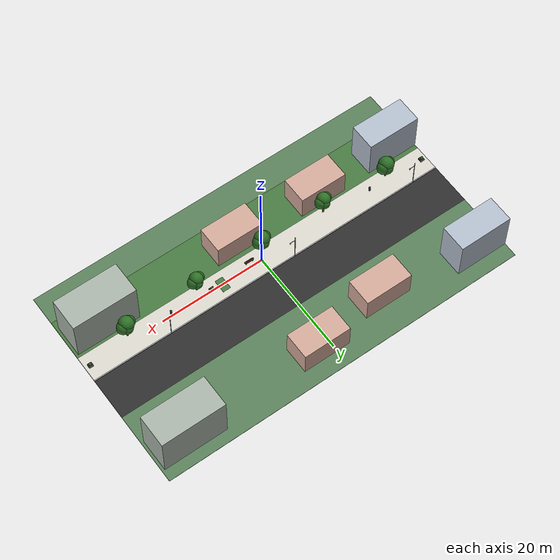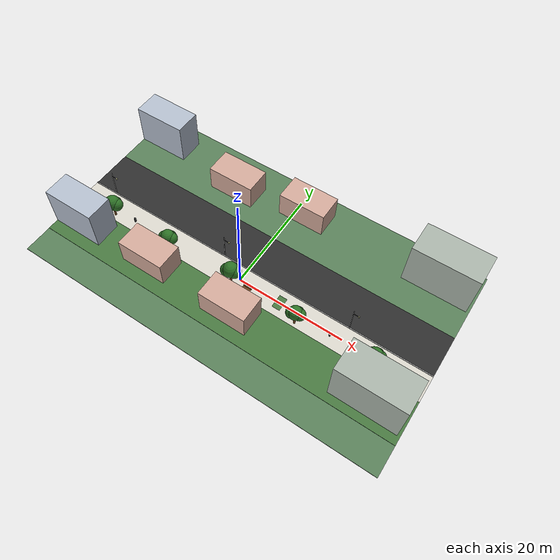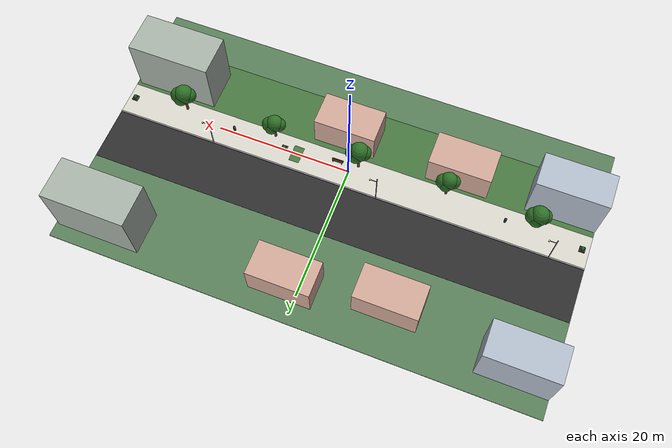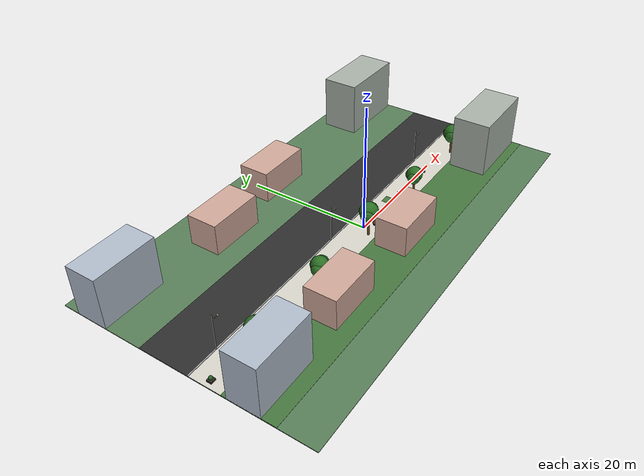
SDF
<sdf version="1.6">
 <world name="sidewalk_avenue">
  <physics name="1ms" type="ignored">
   <max_step_size>0.001</max_step_size>
   <real_time_factor>1.0</real_time_factor>
  </physics>
  <plugin filename="gz-sim-physics-system" name="gz::sim::systems::Physics"/>
  <plugin filename="gz-sim-user-commands-system" name="gz::sim::systems::UserCommands"/>
  <plugin filename="gz-sim-scene-broadcaster-system" name="gz::sim::systems::SceneBroadcaster"/>
  <plugin filename="gz-sim-contact-system" name="gz::sim::systems::Contact"/>
  <plugin filename="gz-sim-sensors-system" name="gz::sim::systems::Sensors">
   <render_engine>ogre2</render_engine>
  </plugin>
  <plugin filename="gz-sim-imu-system" name="gz::sim::systems::Imu"/>
  <plugin filename="gz-sim-navsat-system" name="ignition::gazebo::systems::NavSat"/>
  <spherical_coordinates>
   <surface_model>EARTH_WGS84</surface_model>
   <world_frame_orientation>ENU</world_frame_orientation>
   <latitude_deg>47.478950</latitude_deg>
   <longitude_deg>19.057785</longitude_deg>
   <elevation>0</elevation>
   <heading_deg>0</heading_deg>
  </spherical_coordinates>
  <gravity>0 0 -9.8000000000000007</gravity>
  <magnetic_field>5.5644999999999998e-06 2.2875799999999999e-05 -4.2388400000000002e-05</magnetic_field>
  <atmosphere type="adiabatic"/>
  <scene>
   <ambient>0.40 0.40 0.40 1</ambient>
   <background>0.70 0.70 0.70 1</background>
   <shadows>true</shadows>
  </scene>
  <light type="directional" name="sun">
   <pose>0 0 10 0 0 0</pose>
   <diffuse>0.8 0.8 0.8 1</diffuse>
   <specular>0.2 0.2 0.2 1</specular>
   <attenuation>
    <range>1000</range>
    <constant>0.9</constant>
    <linear>0.01</linear>
    <quadratic>0.001</quadratic>
   </attenuation>
   <direction>-0.5 0.1 -0.9</direction>
  </light>
  <model name="base_ground">
   <pose>0.000 4.000 -0.050 0.000 0.000 0.000</pose>
   <static>true</static>
   <link name="link">
    <collision name="collision"><geometry><box><size>70.000 40.000 0.100</size></box></geometry></collision>
    <visual name="visual">
     <geometry><box><size>70.000 40.000 0.100</size></box></geometry>
     <material>
      <ambient>0.280 0.400 0.280 1.000</ambient>
      <diffuse>0.350 0.500 0.350 1.000</diffuse>
      <specular>0.050 0.050 0.050 1.000</specular>
     </material>
    </visual>
   </link>
  </model>
  <model name="road_surface">
   <pose>0.000 6.500 0.001 0.000 0.000 0.000</pose>
   <static>true</static>
   <link name="link">
    <collision name="collision"><geometry><box><size>70.000 8.000 0.020</size></box></geometry></collision>
    <visual name="visual">
     <geometry><box><size>70.000 8.000 0.020</size></box></geometry>
     <material>
      <ambient>0.144 0.144 0.144 1.000</ambient>
      <diffuse>0.180 0.180 0.180 1.000</diffuse>
      <specular>0.050 0.050 0.050 1.000</specular>
     </material>
    </visual>
   </link>
   <plugin filename="ignition-gazebo-label-system" name="ignition::gazebo::systems::Label">
    <label>1</label>
   </plugin>
  </model>
  <model name="sidewalk_surface">
   <pose>0.000 0.000 0.030 0.000 0.000 0.000</pose>
   <static>true</static>
   <link name="link">
    <collision name="collision"><geometry><box><size>70.000 5.000 0.060</size></box></geometry></collision>
    <visual name="visual">
     <pose>0 0 0.030 0 0 0</pose>
     <geometry><mesh><uri>../meshes/sidewalk_plane.obj</uri><scale>0.5 1.0 1.0</scale></mesh></geometry>
     <material>
      <ambient>0.70 0.69 0.66 1.0</ambient>
      <diffuse>0.85 0.84 0.80 1.0</diffuse>
      <specular>0.05 0.05 0.05 1.0</specular>
      <pbr>
       <metal>
        <albedo_map>../meshes/sidewalk_diffuse.png</albedo_map>
        <metalness>0.0</metalness>
        <roughness>0.92</roughness>
       </metal>
      </pbr>
     </material>
    </visual>
   </link>
   <plugin filename="ignition-gazebo-label-system" name="ignition::gazebo::systems::Label">
    <label>2</label>
   </plugin>
  </model>
  <model name="curb">
   <pose>0.000 2.500 0.040 0.000 0.000 0.000</pose>
   <static>true</static>
   <link name="link">
    <collision name="collision"><geometry><box><size>70.000 0.180 0.200</size></box></geometry></collision>
    <visual name="visual">
     <geometry><box><size>70.000 0.180 0.200</size></box></geometry>
     <material>
      <ambient>0.544 0.544 0.544 1.000</ambient>
      <diffuse>0.680 0.680 0.680 1.000</diffuse>
      <specular>0.050 0.050 0.050 1.000</specular>
     </material>
    </visual>
   </link>
   <plugin filename="ignition-gazebo-label-system" name="ignition::gazebo::systems::Label">
    <label>1</label>
   </plugin>
  </model>
  <model name="grass_strip">
   <pose>0.000 -6.500 0.045 0.000 0.000 0.000</pose>
   <static>true</static>
   <link name="link">
    <collision name="collision"><geometry><box><size>70.000 8.000 0.030</size></box></geometry></collision>
    <visual name="visual">
     <geometry><box><size>70.000 8.000 0.030</size></box></geometry>
     <material>
      <ambient>0.224 0.376 0.200 1.000</ambient>
      <diffuse>0.280 0.470 0.250 1.000</diffuse>
      <specular>0.050 0.050 0.050 1.000</specular>
     </material>
    </visual>
   </link>
   <plugin filename="ignition-gazebo-label-system" name="ignition::gazebo::systems::Label">
    <label>10</label>
   </plugin>
  </model>
  <model name="tree_4">
   <pose>-27.000 -1.350 0.000 0.000 0.000 0.000</pose>
   <static>true</static>
   <link name="link">
    <collision name="cylinder_trunk_collision">
     <pose>0.000 0.000 1.500 0.000 0.000 0.000</pose>
     <geometry><cylinder><radius>0.180</radius><length>3.000</length></cylinder></geometry>
    </collision>
    <visual name="cylinder_trunk_visual">
     <pose>0.000 0.000 1.500 0.000 0.000 0.000</pose>
     <geometry><cylinder><radius>0.180</radius><length>3.000</length></cylinder></geometry>
     <material>
      <ambient>0.360 0.224 0.096 1.000</ambient>
      <diffuse>0.450 0.280 0.120 1.000</diffuse>
      <specular>0.050 0.050 0.050 1.000</specular>
     </material>
    </visual>
    <visual name="canopy_visual_0">
     <pose>0.000 0.000 3.480 0.000 0.000 0.000</pose>
     <geometry><sphere><radius>1.400</radius></sphere></geometry>
     <material>
      <ambient>0.144 0.360 0.120 1.000</ambient>
      <diffuse>0.180 0.450 0.150 1.000</diffuse>
      <specular>0.050 0.050 0.050 1.000</specular>
     </material>
    </visual>
    <visual name="canopy_visual_1">
     <pose>0.700 0.200 3.240 0.000 0.000 0.000</pose>
     <geometry><sphere><radius>1.190</radius></sphere></geometry>
     <material>
      <ambient>0.144 0.360 0.120 1.000</ambient>
      <diffuse>0.180 0.450 0.150 1.000</diffuse>
      <specular>0.050 0.050 0.050 1.000</specular>
     </material>
    </visual>
    <visual name="canopy_visual_2">
     <pose>-0.600 -0.200 3.240 0.000 0.000 0.000</pose>
     <geometry><sphere><radius>1.120</radius></sphere></geometry>
     <material>
      <ambient>0.144 0.360 0.120 1.000</ambient>
      <diffuse>0.180 0.450 0.150 1.000</diffuse>
      <specular>0.050 0.050 0.050 1.000</specular>
     </material>
    </visual>
    <visual name="canopy_visual_3">
     <pose>0.200 0.600 3.120 0.000 0.000 0.000</pose>
     <geometry><sphere><radius>1.050</radius></sphere></geometry>
     <material>
      <ambient>0.144 0.360 0.120 1.000</ambient>
      <diffuse>0.180 0.450 0.150 1.000</diffuse>
      <specular>0.050 0.050 0.050 1.000</specular>
     </material>
    </visual>
    <collision name="canopy_collision">
     <pose>0.000 0.000 3.360 0.000 0.000 0.000</pose>
     <geometry><sphere><radius>1.680</radius></sphere></geometry>
    </collision>
   </link>
   <plugin filename="ignition-gazebo-label-system" name="ignition::gazebo::systems::Label">
    <label>9</label>
   </plugin>
  </model>
  <model name="tree_5">
   <pose>-14.000 -1.750 0.000 0.000 0.000 0.000</pose>
   <static>true</static>
   <link name="link">
    <collision name="cylinder_trunk_collision">
     <pose>0.000 0.000 1.700 0.000 0.000 0.000</pose>
     <geometry><cylinder><radius>0.180</radius><length>3.400</length></cylinder></geometry>
    </collision>
    <visual name="cylinder_trunk_visual">
     <pose>0.000 0.000 1.700 0.000 0.000 0.000</pose>
     <geometry><cylinder><radius>0.180</radius><length>3.400</length></cylinder></geometry>
     <material>
      <ambient>0.360 0.224 0.096 1.000</ambient>
      <diffuse>0.450 0.280 0.120 1.000</diffuse>
      <specular>0.050 0.050 0.050 1.000</specular>
     </material>
    </visual>
    <visual name="canopy_visual_0">
     <pose>0.000 0.000 3.880 0.000 0.000 0.000</pose>
     <geometry><sphere><radius>1.250</radius></sphere></geometry>
     <material>
      <ambient>0.144 0.360 0.120 1.000</ambient>
      <diffuse>0.180 0.450 0.150 1.000</diffuse>
      <specular>0.050 0.050 0.050 1.000</specular>
     </material>
    </visual>
    <visual name="canopy_visual_1">
     <pose>0.700 0.200 3.640 0.000 0.000 0.000</pose>
     <geometry><sphere><radius>1.062</radius></sphere></geometry>
     <material>
      <ambient>0.144 0.360 0.120 1.000</ambient>
      <diffuse>0.180 0.450 0.150 1.000</diffuse>
      <specular>0.050 0.050 0.050 1.000</specular>
     </material>
    </visual>
    <visual name="canopy_visual_2">
     <pose>-0.600 -0.200 3.640 0.000 0.000 0.000</pose>
     <geometry><sphere><radius>1.000</radius></sphere></geometry>
     <material>
      <ambient>0.144 0.360 0.120 1.000</ambient>
      <diffuse>0.180 0.450 0.150 1.000</diffuse>
      <specular>0.050 0.050 0.050 1.000</specular>
     </material>
    </visual>
    <visual name="canopy_visual_3">
     <pose>0.200 0.600 3.520 0.000 0.000 0.000</pose>
     <geometry><sphere><radius>0.938</radius></sphere></geometry>
     <material>
      <ambient>0.144 0.360 0.120 1.000</ambient>
      <diffuse>0.180 0.450 0.150 1.000</diffuse>
      <specular>0.050 0.050 0.050 1.000</specular>
     </material>
    </visual>
    <collision name="canopy_collision">
     <pose>0.000 0.000 3.760 0.000 0.000 0.000</pose>
     <geometry><sphere><radius>1.500</radius></sphere></geometry>
    </collision>
   </link>
   <plugin filename="ignition-gazebo-label-system" name="ignition::gazebo::systems::Label">
    <label>9</label>
   </plugin>
  </model>
  <model name="tree_6">
   <pose>-1.000 -1.350 0.000 0.000 0.000 0.000</pose>
   <static>true</static>
   <link name="link">
    <collision name="cylinder_trunk_collision">
     <pose>0.000 0.000 1.900 0.000 0.000 0.000</pose>
     <geometry><cylinder><radius>0.180</radius><length>3.800</length></cylinder></geometry>
    </collision>
    <visual name="cylinder_trunk_visual">
     <pose>0.000 0.000 1.900 0.000 0.000 0.000</pose>
     <geometry><cylinder><radius>0.180</radius><length>3.800</length></cylinder></geometry>
     <material>
      <ambient>0.360 0.224 0.096 1.000</ambient>
      <diffuse>0.450 0.280 0.120 1.000</diffuse>
      <specular>0.050 0.050 0.050 1.000</specular>
     </material>
    </visual>
    <visual name="canopy_visual_0">
     <pose>0.000 0.000 4.280 0.000 0.000 0.000</pose>
     <geometry><sphere><radius>1.400</radius></sphere></geometry>
     <material>
      <ambient>0.144 0.360 0.120 1.000</ambient>
      <diffuse>0.180 0.450 0.150 1.000</diffuse>
      <specular>0.050 0.050 0.050 1.000</specular>
     </material>
    </visual>
    <visual name="canopy_visual_1">
     <pose>0.700 0.200 4.040 0.000 0.000 0.000</pose>
     <geometry><sphere><radius>1.190</radius></sphere></geometry>
     <material>
      <ambient>0.144 0.360 0.120 1.000</ambient>
      <diffuse>0.180 0.450 0.150 1.000</diffuse>
      <specular>0.050 0.050 0.050 1.000</specular>
     </material>
    </visual>
    <visual name="canopy_visual_2">
     <pose>-0.600 -0.200 4.040 0.000 0.000 0.000</pose>
     <geometry><sphere><radius>1.120</radius></sphere></geometry>
     <material>
      <ambient>0.144 0.360 0.120 1.000</ambient>
      <diffuse>0.180 0.450 0.150 1.000</diffuse>
      <specular>0.050 0.050 0.050 1.000</specular>
     </material>
    </visual>
    <visual name="canopy_visual_3">
     <pose>0.200 0.600 3.920 0.000 0.000 0.000</pose>
     <geometry><sphere><radius>1.050</radius></sphere></geometry>
     <material>
      <ambient>0.144 0.360 0.120 1.000</ambient>
      <diffuse>0.180 0.450 0.150 1.000</diffuse>
      <specular>0.050 0.050 0.050 1.000</specular>
     </material>
    </visual>
    <collision name="canopy_collision">
     <pose>0.000 0.000 4.160 0.000 0.000 0.000</pose>
     <geometry><sphere><radius>1.680</radius></sphere></geometry>
    </collision>
   </link>
   <plugin filename="ignition-gazebo-label-system" name="ignition::gazebo::systems::Label">
    <label>9</label>
   </plugin>
  </model>
  <model name="tree_7">
   <pose>12.000 -1.750 0.000 0.000 0.000 0.000</pose>
   <static>true</static>
   <link name="link">
    <collision name="cylinder_trunk_collision">
     <pose>0.000 0.000 1.500 0.000 0.000 0.000</pose>
     <geometry><cylinder><radius>0.180</radius><length>3.000</length></cylinder></geometry>
    </collision>
    <visual name="cylinder_trunk_visual">
     <pose>0.000 0.000 1.500 0.000 0.000 0.000</pose>
     <geometry><cylinder><radius>0.180</radius><length>3.000</length></cylinder></geometry>
     <material>
      <ambient>0.360 0.224 0.096 1.000</ambient>
      <diffuse>0.450 0.280 0.120 1.000</diffuse>
      <specular>0.050 0.050 0.050 1.000</specular>
     </material>
    </visual>
    <visual name="canopy_visual_0">
     <pose>0.000 0.000 3.480 0.000 0.000 0.000</pose>
     <geometry><sphere><radius>1.250</radius></sphere></geometry>
     <material>
      <ambient>0.144 0.360 0.120 1.000</ambient>
      <diffuse>0.180 0.450 0.150 1.000</diffuse>
      <specular>0.050 0.050 0.050 1.000</specular>
     </material>
    </visual>
    <visual name="canopy_visual_1">
     <pose>0.700 0.200 3.240 0.000 0.000 0.000</pose>
     <geometry><sphere><radius>1.062</radius></sphere></geometry>
     <material>
      <ambient>0.144 0.360 0.120 1.000</ambient>
      <diffuse>0.180 0.450 0.150 1.000</diffuse>
      <specular>0.050 0.050 0.050 1.000</specular>
     </material>
    </visual>
    <visual name="canopy_visual_2">
     <pose>-0.600 -0.200 3.240 0.000 0.000 0.000</pose>
     <geometry><sphere><radius>1.000</radius></sphere></geometry>
     <material>
      <ambient>0.144 0.360 0.120 1.000</ambient>
      <diffuse>0.180 0.450 0.150 1.000</diffuse>
      <specular>0.050 0.050 0.050 1.000</specular>
     </material>
    </visual>
    <visual name="canopy_visual_3">
     <pose>0.200 0.600 3.120 0.000 0.000 0.000</pose>
     <geometry><sphere><radius>0.938</radius></sphere></geometry>
     <material>
      <ambient>0.144 0.360 0.120 1.000</ambient>
      <diffuse>0.180 0.450 0.150 1.000</diffuse>
      <specular>0.050 0.050 0.050 1.000</specular>
     </material>
    </visual>
    <collision name="canopy_collision">
     <pose>0.000 0.000 3.360 0.000 0.000 0.000</pose>
     <geometry><sphere><radius>1.500</radius></sphere></geometry>
    </collision>
   </link>
   <plugin filename="ignition-gazebo-label-system" name="ignition::gazebo::systems::Label">
    <label>9</label>
   </plugin>
  </model>
  <model name="tree_8">
   <pose>26.000 -1.350 0.000 0.000 0.000 0.000</pose>
   <static>true</static>
   <link name="link">
    <collision name="cylinder_trunk_collision">
     <pose>0.000 0.000 1.700 0.000 0.000 0.000</pose>
     <geometry><cylinder><radius>0.180</radius><length>3.400</length></cylinder></geometry>
    </collision>
    <visual name="cylinder_trunk_visual">
     <pose>0.000 0.000 1.700 0.000 0.000 0.000</pose>
     <geometry><cylinder><radius>0.180</radius><length>3.400</length></cylinder></geometry>
     <material>
      <ambient>0.360 0.224 0.096 1.000</ambient>
      <diffuse>0.450 0.280 0.120 1.000</diffuse>
      <specular>0.050 0.050 0.050 1.000</specular>
     </material>
    </visual>
    <visual name="canopy_visual_0">
     <pose>0.000 0.000 3.880 0.000 0.000 0.000</pose>
     <geometry><sphere><radius>1.400</radius></sphere></geometry>
     <material>
      <ambient>0.144 0.360 0.120 1.000</ambient>
      <diffuse>0.180 0.450 0.150 1.000</diffuse>
      <specular>0.050 0.050 0.050 1.000</specular>
     </material>
    </visual>
    <visual name="canopy_visual_1">
     <pose>0.700 0.200 3.640 0.000 0.000 0.000</pose>
     <geometry><sphere><radius>1.190</radius></sphere></geometry>
     <material>
      <ambient>0.144 0.360 0.120 1.000</ambient>
      <diffuse>0.180 0.450 0.150 1.000</diffuse>
      <specular>0.050 0.050 0.050 1.000</specular>
     </material>
    </visual>
    <visual name="canopy_visual_2">
     <pose>-0.600 -0.200 3.640 0.000 0.000 0.000</pose>
     <geometry><sphere><radius>1.120</radius></sphere></geometry>
     <material>
      <ambient>0.144 0.360 0.120 1.000</ambient>
      <diffuse>0.180 0.450 0.150 1.000</diffuse>
      <specular>0.050 0.050 0.050 1.000</specular>
     </material>
    </visual>
    <visual name="canopy_visual_3">
     <pose>0.200 0.600 3.520 0.000 0.000 0.000</pose>
     <geometry><sphere><radius>1.050</radius></sphere></geometry>
     <material>
      <ambient>0.144 0.360 0.120 1.000</ambient>
      <diffuse>0.180 0.450 0.150 1.000</diffuse>
      <specular>0.050 0.050 0.050 1.000</specular>
     </material>
    </visual>
    <collision name="canopy_collision">
     <pose>0.000 0.000 3.760 0.000 0.000 0.000</pose>
     <geometry><sphere><radius>1.680</radius></sphere></geometry>
    </collision>
   </link>
   <plugin filename="ignition-gazebo-label-system" name="ignition::gazebo::systems::Label">
    <label>9</label>
   </plugin>
  </model>
  <model name="lamp_2">
   <pose>-30.000 2.500 0.000 0.000 0.000 0.000</pose>
   <static>true</static>
   <link name="link">
    <collision name="pole_collision">
     <pose>0.000 0.000 2.900 0.000 0.000 0.000</pose>
     <geometry><cylinder><radius>0.060</radius><length>5.800</length></cylinder></geometry>
    </collision>
    <visual name="pole_visual">
     <pose>0.000 0.000 2.900 0.000 0.000 0.000</pose>
     <geometry><cylinder><radius>0.060</radius><length>5.800</length></cylinder></geometry>
     <material>
      <ambient>0.120 0.120 0.120 1.000</ambient>
      <diffuse>0.150 0.150 0.150 1.000</diffuse>
      <specular>0.050 0.050 0.050 1.000</specular>
     </material>
    </visual>
    <visual name="arm_visual">
     <pose>0.550 0.000 5.000 0.000 0.000 0.000</pose>
     <geometry><box><size>1.100 0.050 0.050</size></box></geometry>
     <material>
      <ambient>0.120 0.120 0.120 1.000</ambient>
      <diffuse>0.150 0.150 0.150 1.000</diffuse>
      <specular>0.050 0.050 0.050 1.000</specular>
     </material>
    </visual>
    <visual name="lamp_visual">
     <pose>1.000 0.000 4.950 0.000 0.000 0.000</pose>
     <geometry><box><size>0.180 0.180 0.220</size></box></geometry>
     <material>
      <ambient>0.760 0.760 0.560 1.000</ambient>
      <diffuse>0.950 0.950 0.700 1.000</diffuse>
      <specular>0.050 0.050 0.050 1.000</specular>
     </material>
    </visual>
   </link>
   <plugin filename="ignition-gazebo-label-system" name="ignition::gazebo::systems::Label">
    <label>6</label>
   </plugin>
  </model>
  <model name="lamp_3">
   <pose>-5.000 2.500 0.000 0.000 0.000 0.000</pose>
   <static>true</static>
   <link name="link">
    <collision name="pole_collision">
     <pose>0.000 0.000 2.900 0.000 0.000 0.000</pose>
     <geometry><cylinder><radius>0.060</radius><length>5.800</length></cylinder></geometry>
    </collision>
    <visual name="pole_visual">
     <pose>0.000 0.000 2.900 0.000 0.000 0.000</pose>
     <geometry><cylinder><radius>0.060</radius><length>5.800</length></cylinder></geometry>
     <material>
      <ambient>0.120 0.120 0.120 1.000</ambient>
      <diffuse>0.150 0.150 0.150 1.000</diffuse>
      <specular>0.050 0.050 0.050 1.000</specular>
     </material>
    </visual>
    <visual name="arm_visual">
     <pose>0.550 0.000 5.000 0.000 0.000 0.000</pose>
     <geometry><box><size>1.100 0.050 0.050</size></box></geometry>
     <material>
      <ambient>0.120 0.120 0.120 1.000</ambient>
      <diffuse>0.150 0.150 0.150 1.000</diffuse>
      <specular>0.050 0.050 0.050 1.000</specular>
     </material>
    </visual>
    <visual name="lamp_visual">
     <pose>1.000 0.000 4.950 0.000 0.000 0.000</pose>
     <geometry><box><size>0.180 0.180 0.220</size></box></geometry>
     <material>
      <ambient>0.760 0.760 0.560 1.000</ambient>
      <diffuse>0.950 0.950 0.700 1.000</diffuse>
      <specular>0.050 0.050 0.050 1.000</specular>
     </material>
    </visual>
   </link>
   <plugin filename="ignition-gazebo-label-system" name="ignition::gazebo::systems::Label">
    <label>6</label>
   </plugin>
  </model>
  <model name="lamp_4">
   <pose>20.000 2.500 0.000 0.000 0.000 0.000</pose>
   <static>true</static>
   <link name="link">
    <collision name="pole_collision">
     <pose>0.000 0.000 2.900 0.000 0.000 0.000</pose>
     <geometry><cylinder><radius>0.060</radius><length>5.800</length></cylinder></geometry>
    </collision>
    <visual name="pole_visual">
     <pose>0.000 0.000 2.900 0.000 0.000 0.000</pose>
     <geometry><cylinder><radius>0.060</radius><length>5.800</length></cylinder></geometry>
     <material>
      <ambient>0.120 0.120 0.120 1.000</ambient>
      <diffuse>0.150 0.150 0.150 1.000</diffuse>
      <specular>0.050 0.050 0.050 1.000</specular>
     </material>
    </visual>
    <visual name="arm_visual">
     <pose>0.550 0.000 5.000 0.000 0.000 0.000</pose>
     <geometry><box><size>1.100 0.050 0.050</size></box></geometry>
     <material>
      <ambient>0.120 0.120 0.120 1.000</ambient>
      <diffuse>0.150 0.150 0.150 1.000</diffuse>
      <specular>0.050 0.050 0.050 1.000</specular>
     </material>
    </visual>
    <visual name="lamp_visual">
     <pose>1.000 0.000 4.950 0.000 0.000 0.000</pose>
     <geometry><box><size>0.180 0.180 0.220</size></box></geometry>
     <material>
      <ambient>0.760 0.760 0.560 1.000</ambient>
      <diffuse>0.950 0.950 0.700 1.000</diffuse>
      <specular>0.050 0.050 0.050 1.000</specular>
     </material>
    </visual>
   </link>
   <plugin filename="ignition-gazebo-label-system" name="ignition::gazebo::systems::Label">
    <label>6</label>
   </plugin>
  </model>
  <model name="bench_2">
   <pose>2.000 -0.950 0.000 0.000 0.000 3.142</pose>
   <static>true</static>
   <link name="link">
    <collision name="seat_collision">
     <pose>0.000 0.000 0.420 0.000 0.000 0.000</pose>
     <geometry><box><size>1.600 0.450 0.080</size></box></geometry>
    </collision>
    <visual name="seat_visual">
     <pose>0.000 0.000 0.420 0.000 0.000 0.000</pose>
     <geometry><box><size>1.600 0.450 0.080</size></box></geometry>
     <material>
      <ambient>0.360 0.224 0.096 1.000</ambient>
      <diffuse>0.450 0.280 0.120 1.000</diffuse>
      <specular>0.050 0.050 0.050 1.000</specular>
     </material>
    </visual>
    <collision name="back_collision">
     <pose>0.000 -0.180 0.720 0.000 0.000 0.000</pose>
     <geometry><box><size>1.600 0.080 0.550</size></box></geometry>
    </collision>
    <visual name="back_visual">
     <pose>0.000 -0.180 0.720 0.000 0.000 0.000</pose>
     <geometry><box><size>1.600 0.080 0.550</size></box></geometry>
     <material>
      <ambient>0.360 0.224 0.096 1.000</ambient>
      <diffuse>0.450 0.280 0.120 1.000</diffuse>
      <specular>0.050 0.050 0.050 1.000</specular>
     </material>
    </visual>
    <collision name="leg1_collision">
     <pose>-0.650 0.000 0.225 0.000 0.000 0.000</pose>
     <geometry><box><size>0.080 0.400 0.450</size></box></geometry>
    </collision>
    <visual name="leg1_visual">
     <pose>-0.650 0.000 0.225 0.000 0.000 0.000</pose>
     <geometry><box><size>0.080 0.400 0.450</size></box></geometry>
     <material>
      <ambient>0.160 0.160 0.160 1.000</ambient>
      <diffuse>0.200 0.200 0.200 1.000</diffuse>
      <specular>0.050 0.050 0.050 1.000</specular>
     </material>
    </visual>
    <collision name="leg2_collision">
     <pose>0.650 0.000 0.225 0.000 0.000 0.000</pose>
     <geometry><box><size>0.080 0.400 0.450</size></box></geometry>
    </collision>
    <visual name="leg2_visual">
     <pose>0.650 0.000 0.225 0.000 0.000 0.000</pose>
     <geometry><box><size>0.080 0.400 0.450</size></box></geometry>
     <material>
      <ambient>0.160 0.160 0.160 1.000</ambient>
      <diffuse>0.200 0.200 0.200 1.000</diffuse>
      <specular>0.050 0.050 0.050 1.000</specular>
     </material>
    </visual>
   </link>
   <plugin filename="ignition-gazebo-label-system" name="ignition::gazebo::systems::Label">
    <label>3</label>
   </plugin>
  </model>
  <model name="trash_2">
   <pose>-23.000 -0.500 0.000 0.000 0.000 0.000</pose>
   <static>true</static>
   <link name="link">
    <collision name="bin_collision">
     <pose>0.000 0.000 0.450 0.000 0.000 0.000</pose>
     <geometry><cylinder><radius>0.180</radius><length>0.900</length></cylinder></geometry>
    </collision>
    <visual name="bin_visual">
     <pose>0.000 0.000 0.450 0.000 0.000 0.000</pose>
     <geometry><cylinder><radius>0.180</radius><length>0.900</length></cylinder></geometry>
     <material>
      <ambient>0.144 0.144 0.144 1.000</ambient>
      <diffuse>0.180 0.180 0.180 1.000</diffuse>
      <specular>0.050 0.050 0.050 1.000</specular>
     </material>
    </visual>
   </link>
   <plugin filename="ignition-gazebo-label-system" name="ignition::gazebo::systems::Label">
    <label>3</label>
   </plugin>
  </model>
  <model name="trash_3">
   <pose>18.000 -0.500 0.000 0.000 0.000 0.000</pose>
   <static>true</static>
   <link name="link">
    <collision name="bin_collision">
     <pose>0.000 0.000 0.450 0.000 0.000 0.000</pose>
     <geometry><cylinder><radius>0.180</radius><length>0.900</length></cylinder></geometry>
    </collision>
    <visual name="bin_visual">
     <pose>0.000 0.000 0.450 0.000 0.000 0.000</pose>
     <geometry><cylinder><radius>0.180</radius><length>0.900</length></cylinder></geometry>
     <material>
      <ambient>0.144 0.144 0.144 1.000</ambient>
      <diffuse>0.180 0.180 0.180 1.000</diffuse>
      <specular>0.050 0.050 0.050 1.000</specular>
     </material>
    </visual>
   </link>
   <plugin filename="ignition-gazebo-label-system" name="ignition::gazebo::systems::Label">
    <label>3</label>
   </plugin>
  </model>
  <model name="planter_2">
   <pose>-34.000 -0.200 0.160 0.000 0.000 0.000</pose>
   <static>true</static>
   <link name="link">
    <collision name="collision"><geometry><box><size>0.800 0.800 0.320</size></box></geometry></collision>
    <visual name="visual">
     <geometry><box><size>0.800 0.800 0.320</size></box></geometry>
     <material>
      <ambient>0.160 0.144 0.112 1.000</ambient>
      <diffuse>0.200 0.180 0.140 1.000</diffuse>
      <specular>0.050 0.050 0.050 1.000</specular>
     </material>
    </visual>
   </link>
   <plugin filename="ignition-gazebo-label-system" name="ignition::gazebo::systems::Label">
    <label>3</label>
   </plugin>
  </model>
  <model name="shrub_2">
   <pose>-34.000 -0.200 0.550 0.000 0.000 0.000</pose>
   <static>true</static>
   <link name="link">
    <collision name="collision"><geometry><sphere><radius>0.280</radius></sphere></geometry></collision>
    <visual name="visual">
     <geometry><sphere><radius>0.280</radius></sphere></geometry>
     <material>
      <ambient>0.136 0.304 0.120 1.000</ambient>
      <diffuse>0.170 0.380 0.150 1.000</diffuse>
      <specular>0.050 0.050 0.050 1.000</specular>
     </material>
    </visual>
   </link>
   <plugin filename="ignition-gazebo-label-system" name="ignition::gazebo::systems::Label">
    <label>9</label>
   </plugin>
  </model>
  <model name="planter_3">
   <pose>10.000 -0.200 0.160 0.000 0.000 0.000</pose>
   <static>true</static>
   <link name="link">
    <collision name="collision"><geometry><box><size>0.800 0.800 0.320</size></box></geometry></collision>
    <visual name="visual">
     <geometry><box><size>0.800 0.800 0.320</size></box></geometry>
     <material>
      <ambient>0.160 0.144 0.112 1.000</ambient>
      <diffuse>0.200 0.180 0.140 1.000</diffuse>
      <specular>0.050 0.050 0.050 1.000</specular>
     </material>
    </visual>
   </link>
   <plugin filename="ignition-gazebo-label-system" name="ignition::gazebo::systems::Label">
    <label>3</label>
   </plugin>
  </model>
  <model name="shrub_3">
   <pose>10.000 -0.200 0.550 0.000 0.000 0.000</pose>
   <static>true</static>
   <link name="link">
    <collision name="collision"><geometry><sphere><radius>0.280</radius></sphere></geometry></collision>
    <visual name="visual">
     <geometry><sphere><radius>0.280</radius></sphere></geometry>
     <material>
      <ambient>0.136 0.304 0.120 1.000</ambient>
      <diffuse>0.170 0.380 0.150 1.000</diffuse>
      <specular>0.050 0.050 0.050 1.000</specular>
     </material>
    </visual>
   </link>
   <plugin filename="ignition-gazebo-label-system" name="ignition::gazebo::systems::Label">
    <label>9</label>
   </plugin>
  </model>
  <model name="planter_4">
   <pose>34.000 -0.200 0.160 0.000 0.000 0.000</pose>
   <static>true</static>
   <link name="link">
    <collision name="collision"><geometry><box><size>0.800 0.800 0.320</size></box></geometry></collision>
    <visual name="visual">
     <geometry><box><size>0.800 0.800 0.320</size></box></geometry>
     <material>
      <ambient>0.160 0.144 0.112 1.000</ambient>
      <diffuse>0.200 0.180 0.140 1.000</diffuse>
      <specular>0.050 0.050 0.050 1.000</specular>
     </material>
    </visual>
   </link>
   <plugin filename="ignition-gazebo-label-system" name="ignition::gazebo::systems::Label">
    <label>3</label>
   </plugin>
  </model>
  <model name="shrub_4">
   <pose>34.000 -0.200 0.550 0.000 0.000 0.000</pose>
   <static>true</static>
   <link name="link">
    <collision name="collision"><geometry><sphere><radius>0.280</radius></sphere></geometry></collision>
    <visual name="visual">
     <geometry><sphere><radius>0.280</radius></sphere></geometry>
     <material>
      <ambient>0.136 0.304 0.120 1.000</ambient>
      <diffuse>0.170 0.380 0.150 1.000</diffuse>
      <specular>0.050 0.050 0.050 1.000</specular>
     </material>
    </visual>
   </link>
   <plugin filename="ignition-gazebo-label-system" name="ignition::gazebo::systems::Label">
    <label>9</label>
   </plugin>
  </model>
  <model name="bldg_2">
   <static>true</static>
   <pose>-30.000 -5.800 4.00 0 0 0</pose>
   <link name="link">
    <collision name="col"><geometry><box><size>10 5 8</size></box></geometry></collision>
    <visual name="vis">
     <geometry><box><size>10 5 8</size></box></geometry>
     <material>
      <ambient>0.7 0.74 0.8 1</ambient>
      <diffuse>0.7 0.74 0.8 1</diffuse>
      <specular>0.1 0.1 0.1 1</specular>
     </material>
    </visual>
   </link>
   <plugin name="ignition::gazebo::systems::Label" filename="ignition-gazebo-label-system">
    <label>3</label>
   </plugin>
  </model>
  <model name="bldg_2_mirror">
   <static>true</static>
   <pose>-30.000 18.800 4.00 0 0 0</pose>
   <link name="link">
    <collision name="col"><geometry><box><size>10 5 8</size></box></geometry></collision>
    <visual name="vis">
     <geometry><box><size>10 5 8</size></box></geometry>
     <material>
      <ambient>0.7 0.74 0.8 1</ambient>
      <diffuse>0.7 0.74 0.8 1</diffuse>
      <specular>0.1 0.1 0.1 1</specular>
     </material>
    </visual>
   </link>
   <plugin name="ignition::gazebo::systems::Label" filename="ignition-gazebo-label-system">
    <label>3</label>
   </plugin>
  </model>
  <model name="bldg_2_mid">
   <static>true</static>
   <pose>-15.000 -5.500 2.50 0 0 0</pose>
   <link name="link">
    <collision name="col"><geometry><box><size>9 5 5</size></box></geometry></collision>
    <visual name="vis">
     <geometry><box><size>9 5 5</size></box></geometry>
     <material>
      <ambient>0.82 0.66 0.6 1</ambient>
      <diffuse>0.82 0.66 0.6 1</diffuse>
      <specular>0.1 0.1 0.1 1</specular>
     </material>
    </visual>
   </link>
   <plugin name="ignition::gazebo::systems::Label" filename="ignition-gazebo-label-system">
    <label>3</label>
   </plugin>
  </model>
  <model name="bldg_2_mid_mirror">
   <static>true</static>
   <pose>-12.000 16.500 2.50 0 0 0</pose>
   <link name="link">
    <collision name="col"><geometry><box><size>9 5 5</size></box></geometry></collision>
    <visual name="vis">
     <geometry><box><size>9 5 5</size></box></geometry>
     <material>
      <ambient>0.82 0.66 0.6 1</ambient>
      <diffuse>0.82 0.66 0.6 1</diffuse>
      <specular>0.1 0.1 0.1 1</specular>
     </material>
    </visual>
   </link>
   <plugin name="ignition::gazebo::systems::Label" filename="ignition-gazebo-label-system">
    <label>3</label>
   </plugin>
  </model>
  <model name="bldg_3">
   <static>true</static>
   <pose>2.000 -5.800 2.50 0 0 0</pose>
   <link name="link">
    <collision name="col"><geometry><box><size>9 5 5</size></box></geometry></collision>
    <visual name="vis">
     <geometry><box><size>9 5 5</size></box></geometry>
     <material>
      <ambient>0.82 0.66 0.6 1</ambient>
      <diffuse>0.82 0.66 0.6 1</diffuse>
      <specular>0.1 0.1 0.1 1</specular>
     </material>
    </visual>
   </link>
   <plugin name="ignition::gazebo::systems::Label" filename="ignition-gazebo-label-system">
    <label>3</label>
   </plugin>
  </model>
  <model name="bldg_3_mirror">
   <static>true</static>
   <pose>2.000 18.500 2.50 0 0 0</pose>
   <link name="link">
    <collision name="col"><geometry><box><size>9 5 5</size></box></geometry></collision>
    <visual name="vis">
     <geometry><box><size>9 5 5</size></box></geometry>
     <material>
      <ambient>0.82 0.66 0.6 1</ambient>
      <diffuse>0.82 0.66 0.6 1</diffuse>
      <specular>0.1 0.1 0.1 1</specular>
     </material>
    </visual>
   </link>
   <plugin name="ignition::gazebo::systems::Label" filename="ignition-gazebo-label-system">
    <label>3</label>
   </plugin>
  </model>
  <model name="bldg_4">
   <static>true</static>
   <pose>28.500 -6.000 4.50 0 0 0</pose>
   <link name="link">
    <collision name="col"><geometry><box><size>12 6 9</size></box></geometry></collision>
    <visual name="vis">
     <geometry><box><size>12 6 9</size></box></geometry>
     <material>
      <ambient>0.66 0.7 0.66 1</ambient>
      <diffuse>0.66 0.7 0.66 1</diffuse>
      <specular>0.1 0.1 0.1 1</specular>
     </material>
    </visual>
   </link>
   <plugin name="ignition::gazebo::systems::Label" filename="ignition-gazebo-label-system">
    <label>3</label>
   </plugin>
  </model>
  <model name="bldg_4_mirror">
   <static>true</static>
   <pose>28.500 19.000 4.50 0 0 0</pose>
   <link name="link">
    <collision name="col"><geometry><box><size>12 6 9</size></box></geometry></collision>
    <visual name="vis">
     <geometry><box><size>12 6 9</size></box></geometry>
     <material>
      <ambient>0.66 0.7 0.66 1</ambient>
      <diffuse>0.66 0.7 0.66 1</diffuse>
      <specular>0.1 0.1 0.1 1</specular>
     </material>
    </visual>
   </link>
   <plugin name="ignition::gazebo::systems::Label" filename="ignition-gazebo-label-system">
    <label>3</label>
   </plugin>
  </model>
  <model name="grass_patch">
   <pose>8.000 0.000 0.060 0.000 0.000 0.000</pose>
   <static>true</static>
   <link name="link">
    <visual name="visual">
     <geometry><box><size>1.500 2.500 0.010</size></box></geometry>
     <material>
      <ambient>0.224 0.376 0.200 1.000</ambient>
      <diffuse>0.280 0.470 0.250 1.000</diffuse>
      <specular>0.050 0.050 0.050 1.000</specular>
     </material>
    </visual>
   </link>
   <plugin filename="ignition-gazebo-label-system" name="ignition::gazebo::systems::Label">
    <label>10</label>
   </plugin>
  </model>
 </world>
</sdf>
